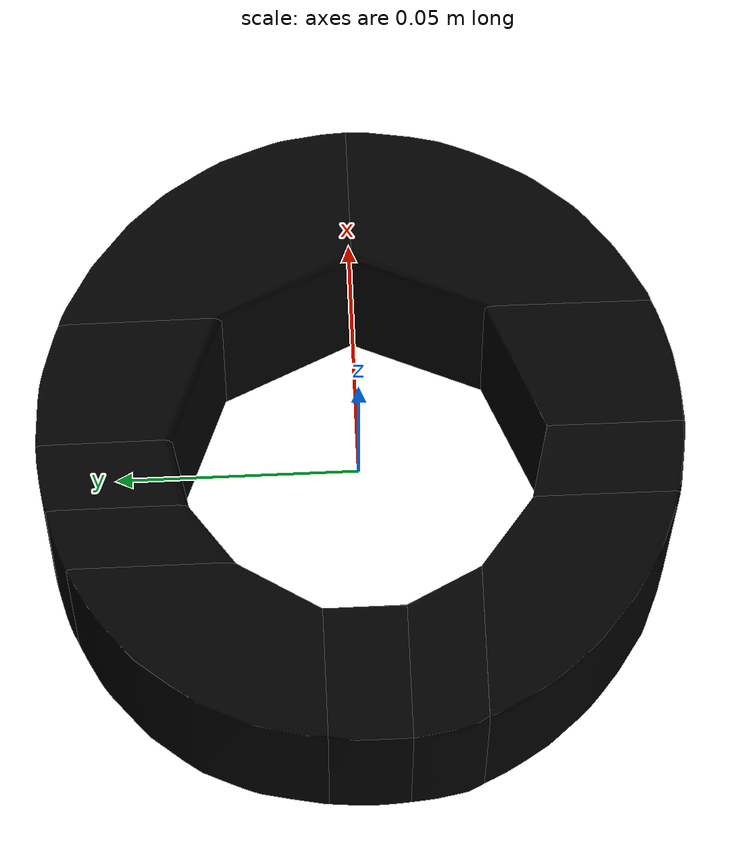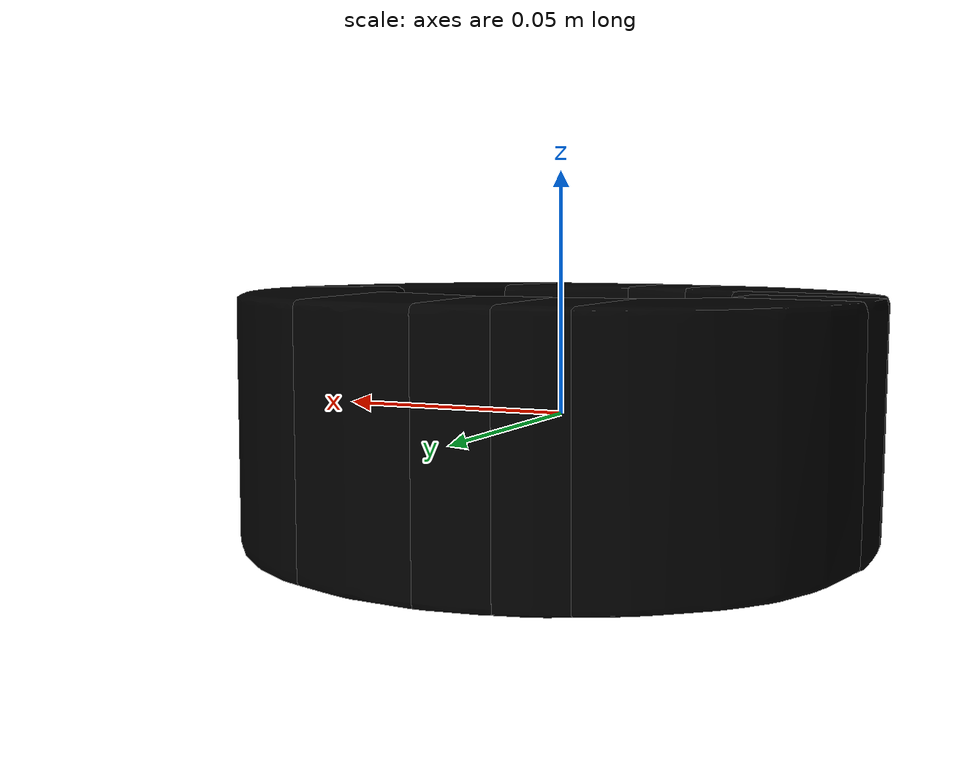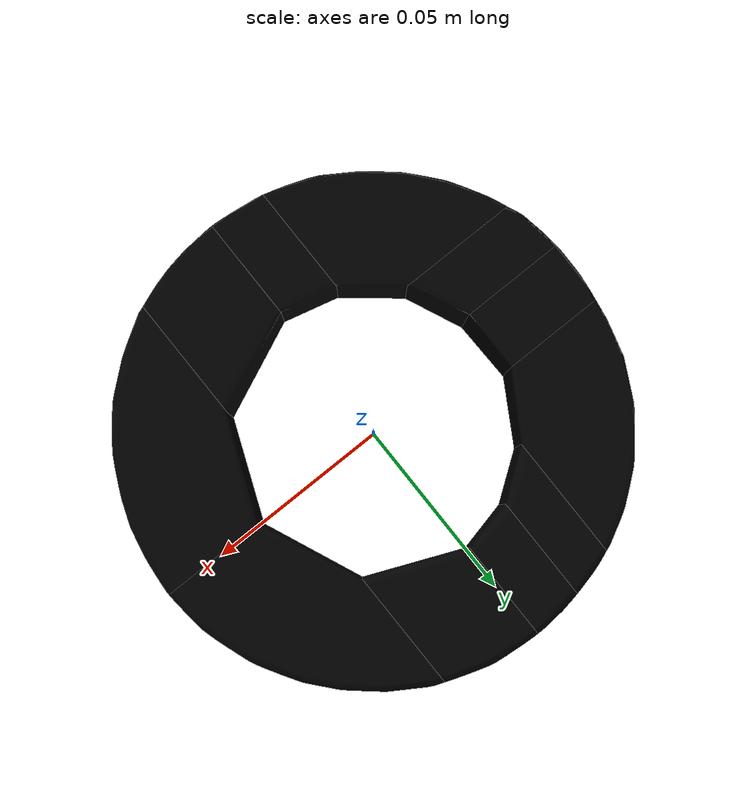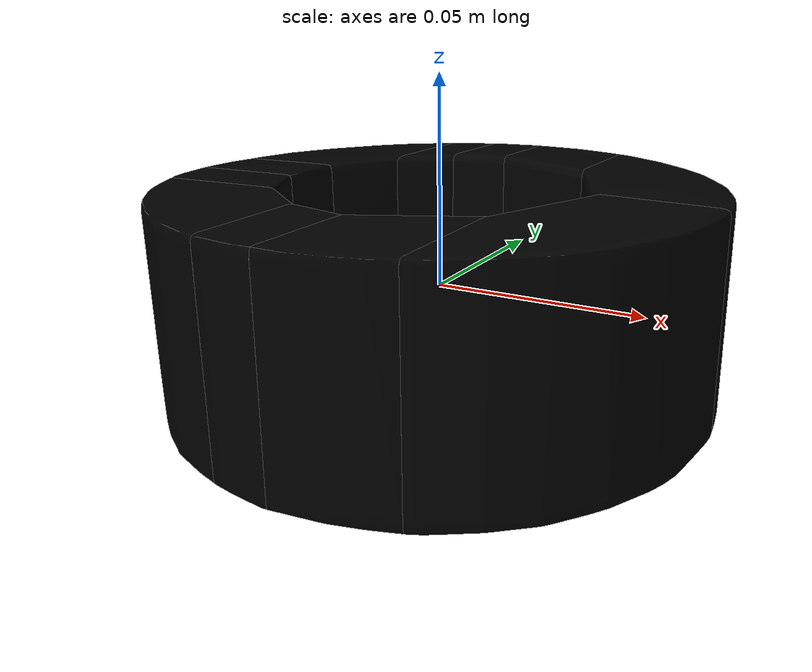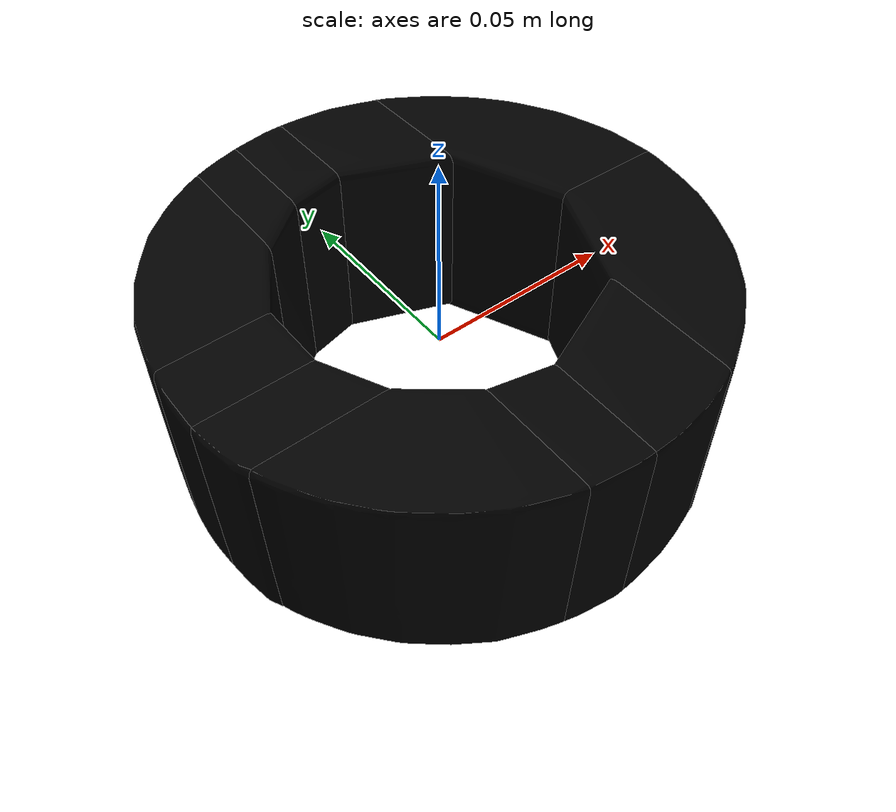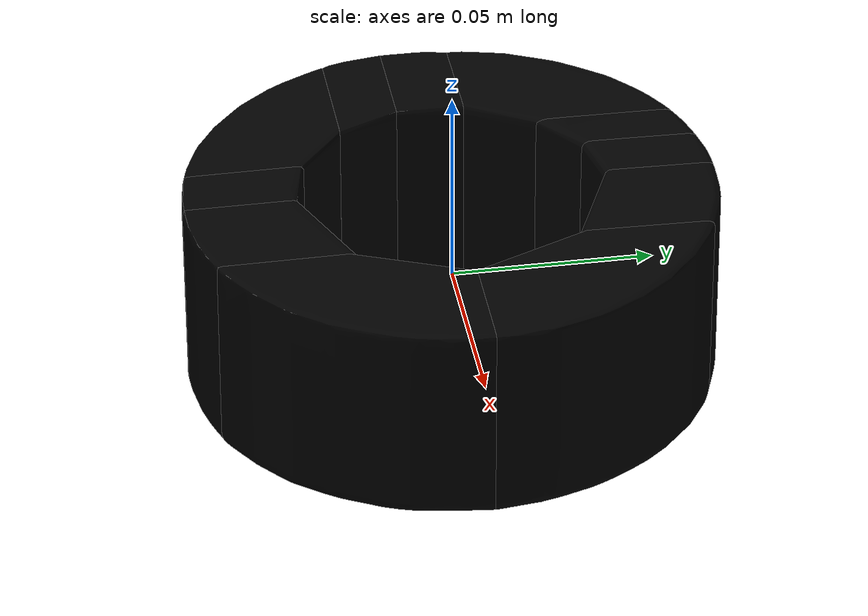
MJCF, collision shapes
<mujoco model="duct_tape">
  <default>
    <default class="visual">
      <geom group="1" type="mesh" density="50" contype="0" conaffinity="0"/>
    </default>
    <default class="collision">
      <geom group="0" type="mesh" density="50"/>
    </default>
  </default>
  <asset>
    <mesh file="duct_tape.obj" name="duct_tape" />
    <mesh file="duct_tape_collision_0.obj" name="duct_tape_collision_0" />
    <mesh file="duct_tape_collision_1.obj" name="duct_tape_collision_1" />
    <mesh file="duct_tape_collision_2.obj" name="duct_tape_collision_2" />
    <mesh file="duct_tape_collision_3.obj" name="duct_tape_collision_3" />
    <mesh file="duct_tape_collision_4.obj" name="duct_tape_collision_4" />
    <mesh file="duct_tape_collision_5.obj" name="duct_tape_collision_5" />
    <mesh file="duct_tape_collision_6.obj" name="duct_tape_collision_6" />
    <mesh file="duct_tape_collision_7.obj" name="duct_tape_collision_7" />
    <mesh file="duct_tape_collision_8.obj" name="duct_tape_collision_8" />
    <mesh file="duct_tape_collision_9.obj" name="duct_tape_collision_9" />
    <mesh file="duct_tape_collision_10.obj" name="duct_tape_collision_10" />
  </asset>
  <worldbody>
    <body>
      <body name="object">
      <geom mesh="duct_tape" class="visual" rgba="1 1 1 1"/>
      <geom mesh="duct_tape_collision_0" rgba="0 0 0 0" class="collision"/>
      <geom mesh="duct_tape_collision_1" rgba="0 0 0 0" class="collision"/>
      <geom mesh="duct_tape_collision_2" rgba="0 0 0 0" class="collision"/>
      <geom mesh="duct_tape_collision_3" rgba="0 0 0 0" class="collision"/>
      <geom mesh="duct_tape_collision_4" rgba="0 0 0 0" class="collision"/>
      <geom mesh="duct_tape_collision_5" rgba="0 0 0 0" class="collision"/>
      <geom mesh="duct_tape_collision_6" rgba="0 0 0 0" class="collision"/>
      <geom mesh="duct_tape_collision_7" rgba="0 0 0 0" class="collision"/>
      <geom mesh="duct_tape_collision_8" rgba="0 0 0 0" class="collision"/>
      <geom mesh="duct_tape_collision_9" rgba="0 0 0 0" class="collision"/>
      <geom mesh="duct_tape_collision_10" rgba="0 0 0 0" class="collision"/>
      </body>
      <site name="bottom_site" pos="0.00013880431652069092 -0.00037794560194015503 -0.02554607018828392" size="0.002" rgba="0 0 0 0"/>
      <site name="top_site" pos="0.00013880431652069092 -0.00037794560194015503 0.02525392919778824" size="0.002" rgba="0 0 0 0"/>
      <site name="horizontal_radius_site" pos="0.065 0 0" size="0.002" rgba="0 0 0 0"/>
    </body>
  </worldbody>
</mujoco>
